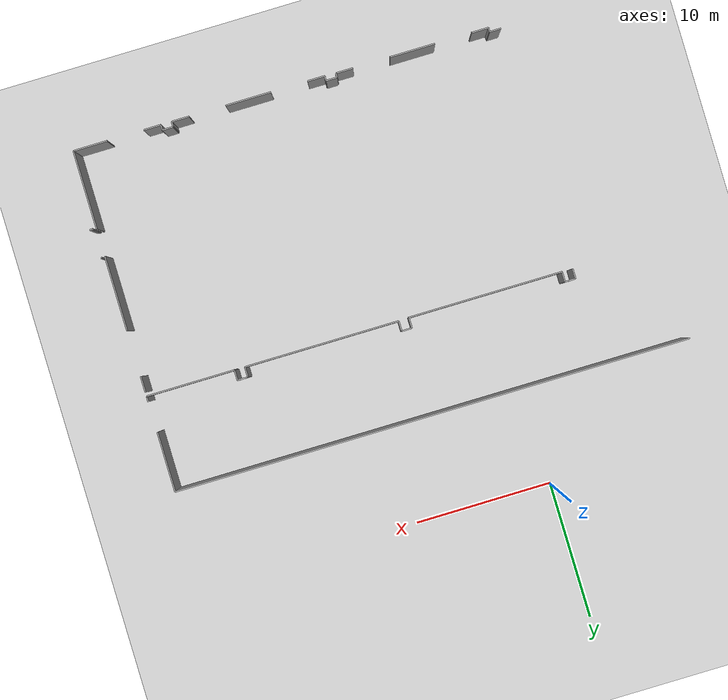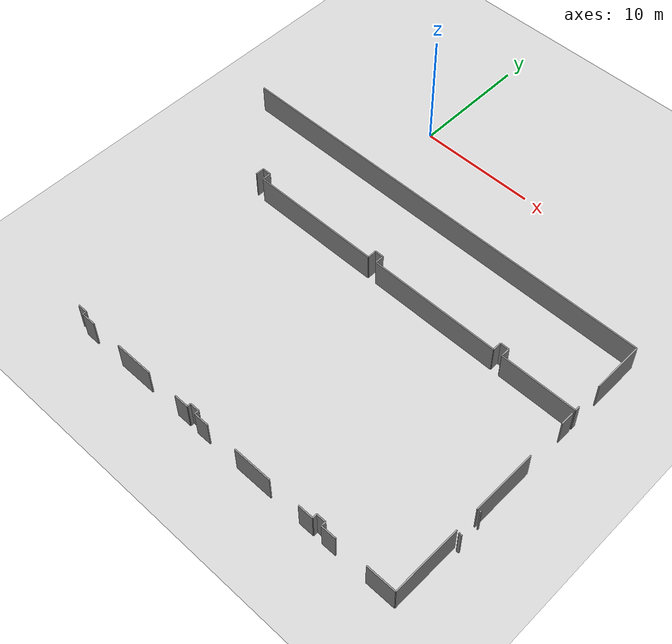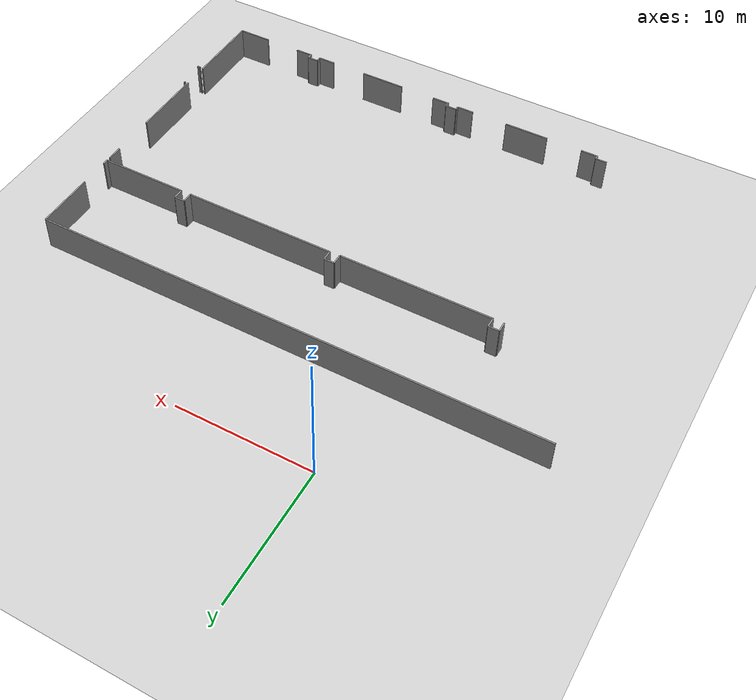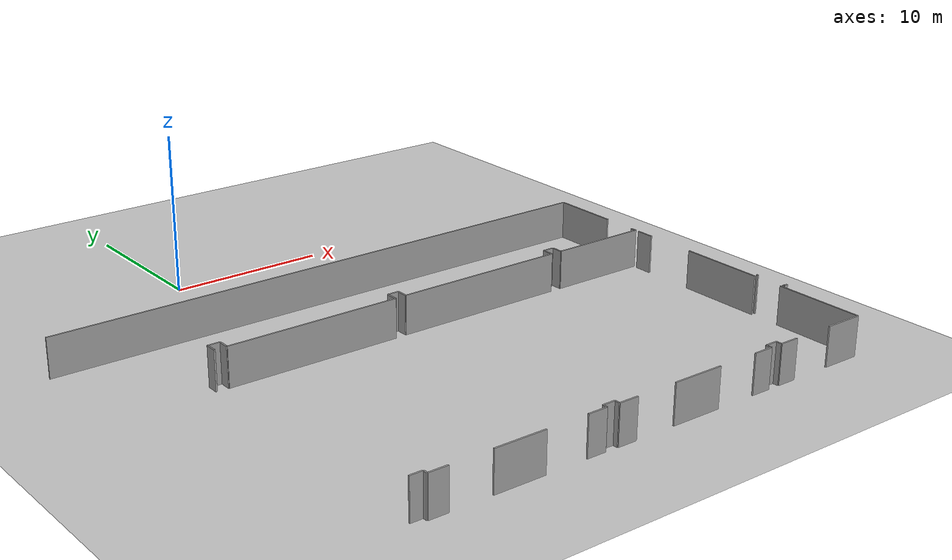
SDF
<sdf version="1.6">
 <world name="default">
  <model name="ground_plane">
   <static>1</static>
   <link name="link">
    <collision name="collision">
     <geometry><plane><normal>0 0 1</normal><size>100 100</size></plane></geometry>
     <surface><friction><ode><mu>100</mu><mu2>50</mu2></ode></friction></surface>
    </collision>
    <visual name="visual">
     <cast_shadows>0</cast_shadows>
     <geometry><plane><normal>0 0 1</normal><size>100 100</size></plane></geometry>
     <material>
      <script><uri>file://media/materials/scripts/gazebo.material</uri><name>Gazebo/Grey</name></script>
     </material>
    </visual>
   </link>
  </model>
  <model name="50052749">
   <static>1</static>
   <link name="Wall_305">
    <collision name="Wall_305_Collision">
     <geometry><box><size>1.16424148057 0.1 2.5</size></box></geometry>
     <pose>0.582120740286 0 1.25 0 0 0</pose>
    </collision>
    <visual name="Wall_305_Visual">
     <pose>0.582120740286 0 1.25 0 0 0</pose>
     <geometry><box><size>1.16424148057 0.1 2.5</size></box></geometry>
     <material>
      <script><uri>file://media/materials/scripts/gazebo.material</uri><name>Gazebo/Grey</name></script>
      <ambient>1 1 1 1</ambient>
     </material>
    </visual>
    <pose>68.0470109095 -46.8636993006 0 0 0 -1.57079632679</pose>
   </link>
   <link name="Wall_306">
    <collision name="Wall_306_Collision">
     <geometry><box><size>5.45223084999 0.1 2.5</size></box></geometry>
     <pose>2.726115425 0 1.25 0 0 0</pose>
    </collision>
    <visual name="Wall_306_Visual">
     <pose>2.726115425 0 1.25 0 0 0</pose>
     <geometry><box><size>5.45223084999 0.1 2.5</size></box></geometry>
     <material>
      <script><uri>file://media/materials/scripts/gazebo.material</uri><name>Gazebo/Grey</name></script>
      <ambient>1 1 1 1</ambient>
     </material>
    </visual>
    <pose>68.0470109095 -51.3677491669 0 0 0 -1.57079632679</pose>
   </link>
   <link name="Wall_307">
    <collision name="Wall_307_Collision">
     <geometry><box><size>5.71596666785 0.1 2.5</size></box></geometry>
     <pose>2.85798333393 0 1.25 0 0 0</pose>
    </collision>
    <visual name="Wall_307_Visual">
     <pose>2.85798333393 0 1.25 0 0 0</pose>
     <geometry><box><size>5.71596666785 0.1 2.5</size></box></geometry>
     <material>
      <script><uri>file://media/materials/scripts/gazebo.material</uri><name>Gazebo/Grey</name></script>
      <ambient>1 1 1 1</ambient>
     </material>
    </visual>
    <pose>68.0470109095 -58.8043384542 0 0 0 -1.57079632679</pose>
   </link>
   <link name="Wall_308">
    <collision name="Wall_308_Collision">
     <geometry><box><size>2.46592989699 0.1 2.5</size></box></geometry>
     <pose>1.2329649485 0 1.25 0 0 0</pose>
    </collision>
    <visual name="Wall_308_Visual">
     <pose>1.2329649485 0 1.25 0 0 0</pose>
     <geometry><box><size>2.46592989699 0.1 2.5</size></box></geometry>
     <material>
      <script><uri>file://media/materials/scripts/gazebo.material</uri><name>Gazebo/Grey</name></script>
      <ambient>1 1 1 1</ambient>
     </material>
    </visual>
    <pose>68.0470109095 -64.5203051221 0 0 0 3.14159265359</pose>
   </link>
   <link name="Wall_309">
    <collision name="Wall_309_Collision">
     <geometry><box><size>1.25692940502 0.1 2.5</size></box></geometry>
     <pose>0.628464702511 0 1.25 0 0 0</pose>
    </collision>
    <visual name="Wall_309_Visual">
     <pose>0.628464702511 0 1.25 0 0 0</pose>
     <geometry><box><size>1.25692940502 0.1 2.5</size></box></geometry>
     <material>
      <script><uri>file://media/materials/scripts/gazebo.material</uri><name>Gazebo/Grey</name></script>
      <ambient>1 1 1 1</ambient>
     </material>
    </visual>
    <pose>62.9129113898 -64.5203051221 0 0 0 3.14159265359</pose>
   </link>
   <link name="Wall_310">
    <collision name="Wall_310_Collision">
     <geometry><box><size>0.37924703424 0.1 2.5</size></box></geometry>
     <pose>0.18962351712 0 1.25 0 0 0</pose>
    </collision>
    <visual name="Wall_310_Visual">
     <pose>0.18962351712 0 1.25 0 0 0</pose>
     <geometry><box><size>0.37924703424 0.1 2.5</size></box></geometry>
     <material>
      <script><uri>file://media/materials/scripts/gazebo.material</uri><name>Gazebo/Grey</name></script>
      <ambient>1 1 1 1</ambient>
     </material>
    </visual>
    <pose>61.6559819848 -64.5203051221 0 0 0 1.57079632679</pose>
   </link>
   <link name="Wall_311">
    <collision name="Wall_311_Collision">
     <geometry><box><size>0.793870170972 0.1 2.5</size></box></geometry>
     <pose>0.396935085486 0 1.25 0 0 0</pose>
    </collision>
    <visual name="Wall_311_Visual">
     <pose>0.396935085486 0 1.25 0 0 0</pose>
     <geometry><box><size>0.793870170972 0.1 2.5</size></box></geometry>
     <material>
      <script><uri>file://media/materials/scripts/gazebo.material</uri><name>Gazebo/Grey</name></script>
      <ambient>1 1 1 1</ambient>
     </material>
    </visual>
    <pose>61.6559819848 -64.1410580878 0 0 0 3.14159265359</pose>
   </link>
   <link name="Wall_312">
    <collision name="Wall_312_Collision">
     <geometry><box><size>0.374935967987 0.1 2.5</size></box></geometry>
     <pose>0.187467983993 0 1.25 0 0 0</pose>
    </collision>
    <visual name="Wall_312_Visual">
     <pose>0.187467983993 0 1.25 0 0 0</pose>
     <geometry><box><size>0.374935967987 0.1 2.5</size></box></geometry>
     <material>
      <script><uri>file://media/materials/scripts/gazebo.material</uri><name>Gazebo/Grey</name></script>
      <ambient>1 1 1 1</ambient>
     </material>
    </visual>
    <pose>60.8621118138 -64.1410580878 0 0 0 -1.57079632679</pose>
   </link>
   <link name="Wall_313">
    <collision name="Wall_313_Collision">
     <geometry><box><size>1.27696318349 0.1 2.5</size></box></geometry>
     <pose>0.638481591747 0 1.25 0 0 0</pose>
    </collision>
    <visual name="Wall_313_Visual">
     <pose>0.638481591747 0 1.25 0 0 0</pose>
     <geometry><box><size>1.27696318349 0.1 2.5</size></box></geometry>
     <material>
      <script><uri>file://media/materials/scripts/gazebo.material</uri><name>Gazebo/Grey</name></script>
      <ambient>1 1 1 1</ambient>
     </material>
    </visual>
    <pose>60.8621118138 -64.5159940558 0 0 0 3.14159265359</pose>
   </link>
   <link name="Wall_314">
    <collision name="Wall_314_Collision">
     <geometry><box><size>3.30582704002 0.1 2.5</size></box></geometry>
     <pose>1.65291352001 0 1.25 0 0 0</pose>
    </collision>
    <visual name="Wall_314_Visual">
     <pose>1.65291352001 0 1.25 0 0 0</pose>
     <geometry><box><size>3.30582704002 0.1 2.5</size></box></geometry>
     <material>
      <script><uri>file://media/materials/scripts/gazebo.material</uri><name>Gazebo/Grey</name></script>
      <ambient>1 1 1 1</ambient>
     </material>
    </visual>
    <pose>56.9173593958 -64.5159940558 0 0 0 3.14159265359</pose>
   </link>
   <link name="Wall_315">
    <collision name="Wall_315_Collision">
     <geometry><box><size>1.26859464312 0.1 2.5</size></box></geometry>
     <pose>0.63429732156 0 1.25 0 0 0</pose>
    </collision>
    <visual name="Wall_315_Visual">
     <pose>0.63429732156 0 1.25 0 0 0</pose>
     <geometry><box><size>1.26859464312 0.1 2.5</size></box></geometry>
     <material>
      <script><uri>file://media/materials/scripts/gazebo.material</uri><name>Gazebo/Grey</name></script>
      <ambient>1 1 1 1</ambient>
     </material>
    </visual>
    <pose>50.9436163252 -64.5159940558 0 0 0 3.14159265359</pose>
   </link>
   <link name="Wall_316">
    <collision name="Wall_316_Collision">
     <geometry><box><size>0.342476175019 0.1 2.5</size></box></geometry>
     <pose>0.17123808751 0 1.25 0 0 0</pose>
    </collision>
    <visual name="Wall_316_Visual">
     <pose>0.17123808751 0 1.25 0 0 0</pose>
     <geometry><box><size>0.342476175019 0.1 2.5</size></box></geometry>
     <material>
      <script><uri>file://media/materials/scripts/gazebo.material</uri><name>Gazebo/Grey</name></script>
      <ambient>1 1 1 1</ambient>
     </material>
    </visual>
    <pose>49.6750216821 -64.5159940558 0 0 0 1.57079632679</pose>
   </link>
   <link name="Wall_317">
    <collision name="Wall_317_Collision">
     <geometry><box><size>0.81200200845 0.1 2.5</size></box></geometry>
     <pose>0.406001004225 0 1.25 0 0 0</pose>
    </collision>
    <visual name="Wall_317_Visual">
     <pose>0.406001004225 0 1.25 0 0 0</pose>
     <geometry><box><size>0.81200200845 0.1 2.5</size></box></geometry>
     <material>
      <script><uri>file://media/materials/scripts/gazebo.material</uri><name>Gazebo/Grey</name></script>
      <ambient>1 1 1 1</ambient>
     </material>
    </visual>
    <pose>49.6750216821 -64.1735178808 0 0 0 3.14159265359</pose>
   </link>
   <link name="Wall_318">
    <collision name="Wall_318_Collision">
     <geometry><box><size>0.304437355135 0.1 2.5</size></box></geometry>
     <pose>0.152218677568 0 1.25 0 0 0</pose>
    </collision>
    <visual name="Wall_318_Visual">
     <pose>0.152218677568 0 1.25 0 0 0</pose>
     <geometry><box><size>0.304437355135 0.1 2.5</size></box></geometry>
     <material>
      <script><uri>file://media/materials/scripts/gazebo.material</uri><name>Gazebo/Grey</name></script>
      <ambient>1 1 1 1</ambient>
     </material>
    </visual>
    <pose>48.8630196737 -64.1735178808 0 0 0 -1.57079632679</pose>
   </link>
   <link name="Wall_319">
    <collision name="Wall_319_Collision">
     <geometry><box><size>1.24691251579 0.1 2.5</size></box></geometry>
     <pose>0.623456257893 0 1.25 0 0 0</pose>
    </collision>
    <visual name="Wall_319_Visual">
     <pose>0.623456257893 0 1.25 0 0 0</pose>
     <geometry><box><size>1.24691251579 0.1 2.5</size></box></geometry>
     <material>
      <script><uri>file://media/materials/scripts/gazebo.material</uri><name>Gazebo/Grey</name></script>
      <ambient>1 1 1 1</ambient>
     </material>
    </visual>
    <pose>48.8630196737 -64.4779552359 0 0 0 3.14159265359</pose>
   </link>
   <link name="Wall_320">
    <collision name="Wall_320_Collision">
     <geometry><box><size>3.29137228847 0.1 2.5</size></box></geometry>
     <pose>1.64568614423 0 1.25 0 0 0</pose>
    </collision>
    <visual name="Wall_320_Visual">
     <pose>1.64568614423 0 1.25 0 0 0</pose>
     <geometry><box><size>3.29137228847 0.1 2.5</size></box></geometry>
     <material>
      <script><uri>file://media/materials/scripts/gazebo.material</uri><name>Gazebo/Grey</name></script>
      <ambient>1 1 1 1</ambient>
     </material>
    </visual>
    <pose>44.9120542484 -64.4779552359 0 0 0 3.14159265359</pose>
   </link>
   <link name="Wall_321">
    <collision name="Wall_321_Collision">
     <geometry><box><size>1.23905115968 0.1 2.5</size></box></geometry>
     <pose>0.619525579838 0 1.25 0 0 0</pose>
    </collision>
    <visual name="Wall_321_Visual">
     <pose>0.619525579838 0 1.25 0 0 0</pose>
     <geometry><box><size>1.23905115968 0.1 2.5</size></box></geometry>
     <material>
      <script><uri>file://media/materials/scripts/gazebo.material</uri><name>Gazebo/Grey</name></script>
      <ambient>1 1 1 1</ambient>
     </material>
    </visual>
    <pose>38.9455385536 -64.4779552359 0 0 0 3.14159265359</pose>
   </link>
   <link name="Wall_322">
    <collision name="Wall_322_Collision">
     <geometry><box><size>0.299111920352 0.1 2.5</size></box></geometry>
     <pose>0.149555960176 0 1.25 0 0 0</pose>
    </collision>
    <visual name="Wall_322_Visual">
     <pose>0.149555960176 0 1.25 0 0 0</pose>
     <geometry><box><size>0.299111920352 0.1 2.5</size></box></geometry>
     <material>
      <script><uri>file://media/materials/scripts/gazebo.material</uri><name>Gazebo/Grey</name></script>
      <ambient>1 1 1 1</ambient>
     </material>
    </visual>
    <pose>37.7064873939 -64.4779552359 0 0 0 1.57079632679</pose>
   </link>
   <link name="Wall_323">
    <collision name="Wall_323_Collision">
     <geometry><box><size>0.825822779674 0.1 2.5</size></box></geometry>
     <pose>0.412911389837 0 1.25 0 0 0</pose>
    </collision>
    <visual name="Wall_323_Visual">
     <pose>0.412911389837 0 1.25 0 0 0</pose>
     <geometry><box><size>0.825822779674 0.1 2.5</size></box></geometry>
     <material>
      <script><uri>file://media/materials/scripts/gazebo.material</uri><name>Gazebo/Grey</name></script>
      <ambient>1 1 1 1</ambient>
     </material>
    </visual>
    <pose>37.7064873939 -64.1788433156 0 0 0 3.14159265359</pose>
   </link>
   <link name="Wall_347">
    <collision name="Wall_347_Collision">
     <geometry><box><size>0.119061506236 0.1 2.5</size></box></geometry>
     <pose>0.0595307531179 0 1.25 0 0 0</pose>
    </collision>
    <visual name="Wall_347_Visual">
     <pose>0.0595307531179 0 1.25 0 0 0</pose>
     <geometry><box><size>0.119061506236 0.1 2.5</size></box></geometry>
     <material>
      <script><uri>file://media/materials/scripts/gazebo.material</uri><name>Gazebo/Grey</name></script>
      <ambient>1 1 1 1</ambient>
     </material>
    </visual>
    <pose>68.30808401 -56.7144856898 0 0 0 -1.57079632679</pose>
   </link>
   <link name="Wall_348">
    <collision name="Wall_348_Collision">
     <geometry><box><size>0.0869821014673 0.1 2.5</size></box></geometry>
     <pose>0.0434910507336 0 1.25 0 0 0</pose>
    </collision>
    <visual name="Wall_348_Visual">
     <pose>0.0434910507336 0 1.25 0 0 0</pose>
     <geometry><box><size>0.0869821014673 0.1 2.5</size></box></geometry>
     <material>
      <script><uri>file://media/materials/scripts/gazebo.material</uri><name>Gazebo/Grey</name></script>
      <ambient>1 1 1 1</ambient>
     </material>
    </visual>
    <pose>68.30808401 -58.8015489407 0 0 0 -1.57079632679</pose>
   </link>
   <link name="Wall_349">
    <collision name="Wall_349_Collision">
     <geometry><box><size>0.237615828207 0.1 2.5</size></box></geometry>
     <pose>0.118807914103 0 1.25 0 0 0</pose>
    </collision>
    <visual name="Wall_349_Visual">
     <pose>0.118807914103 0 1.25 0 0 0</pose>
     <geometry><box><size>0.237615828207 0.1 2.5</size></box></geometry>
     <material>
      <script><uri>file://media/materials/scripts/gazebo.material</uri><name>Gazebo/Grey</name></script>
      <ambient>1 1 1 1</ambient>
     </material>
    </visual>
    <pose>68.30808401 -58.8885310422 0 0 0 0.0</pose>
   </link>
   <link name="Wall_368">
    <collision name="Wall_368_Collision">
     <geometry><box><size>0.732881263092 0.1 2.5</size></box></geometry>
     <pose>0.366440631546 0 1.25 0 0 0</pose>
    </collision>
    <visual name="Wall_368_Visual">
     <pose>0.366440631546 0 1.25 0 0 0</pose>
     <geometry><box><size>0.732881263092 0.1 2.5</size></box></geometry>
     <material>
      <script><uri>file://media/materials/scripts/gazebo.material</uri><name>Gazebo/Grey</name></script>
      <ambient>1 1 1 1</ambient>
     </material>
    </visual>
    <pose>36.8845952923 -46.6103607602 0 0 0 1.57079632679</pose>
   </link>
   <link name="Wall_369">
    <collision name="Wall_369_Collision">
     <geometry><box><size>0.77142726724 0.1 2.5</size></box></geometry>
     <pose>0.38571363362 0 1.25 0 0 0</pose>
    </collision>
    <visual name="Wall_369_Visual">
     <pose>0.38571363362 0 1.25 0 0 0</pose>
     <geometry><box><size>0.77142726724 0.1 2.5</size></box></geometry>
     <material>
      <script><uri>file://media/materials/scripts/gazebo.material</uri><name>Gazebo/Grey</name></script>
      <ambient>1 1 1 1</ambient>
     </material>
    </visual>
    <pose>36.8845952923 -45.8774794971 0 0 0 0.0</pose>
   </link>
   <link name="Wall_370">
    <collision name="Wall_370_Collision">
     <geometry><box><size>0.732881263092 0.1 2.5</size></box></geometry>
     <pose>0.366440631546 0 1.25 0 0 0</pose>
    </collision>
    <visual name="Wall_370_Visual">
     <pose>0.366440631546 0 1.25 0 0 0</pose>
     <geometry><box><size>0.732881263092 0.1 2.5</size></box></geometry>
     <material>
      <script><uri>file://media/materials/scripts/gazebo.material</uri><name>Gazebo/Grey</name></script>
      <ambient>1 1 1 1</ambient>
     </material>
    </visual>
    <pose>37.6560225596 -45.8774794971 0 0 0 -1.57079632679</pose>
   </link>
   <link name="Wall_371">
    <collision name="Wall_371_Collision">
     <geometry><box><size>11.2100402197 0.1 2.5</size></box></geometry>
     <pose>5.60502010986 0 1.25 0 0 0</pose>
    </collision>
    <visual name="Wall_371_Visual">
     <pose>5.60502010986 0 1.25 0 0 0</pose>
     <geometry><box><size>11.2100402197 0.1 2.5</size></box></geometry>
     <material>
      <script><uri>file://media/materials/scripts/gazebo.material</uri><name>Gazebo/Grey</name></script>
      <ambient>1 1 1 1</ambient>
     </material>
    </visual>
    <pose>37.6560225596 -46.6103607602 0 0 0 0.0</pose>
   </link>
   <link name="Wall_372">
    <collision name="Wall_372_Collision">
     <geometry><box><size>0.771934451506 0.1 2.5</size></box></geometry>
     <pose>0.385967225753 0 1.25 0 0 0</pose>
    </collision>
    <visual name="Wall_372_Visual">
     <pose>0.385967225753 0 1.25 0 0 0</pose>
     <geometry><box><size>0.771934451506 0.1 2.5</size></box></geometry>
     <material>
      <script><uri>file://media/materials/scripts/gazebo.material</uri><name>Gazebo/Grey</name></script>
      <ambient>1 1 1 1</ambient>
     </material>
    </visual>
    <pose>48.8660627793 -46.6103607602 0 0 0 1.57079632679</pose>
   </link>
   <link name="Wall_373">
    <collision name="Wall_373_Collision">
     <geometry><box><size>0.749745139907 0.1 2.5</size></box></geometry>
     <pose>0.374872569953 0 1.25 0 0 0</pose>
    </collision>
    <visual name="Wall_373_Visual">
     <pose>0.374872569953 0 1.25 0 0 0</pose>
     <geometry><box><size>0.749745139907 0.1 2.5</size></box></geometry>
     <material>
      <script><uri>file://media/materials/scripts/gazebo.material</uri><name>Gazebo/Grey</name></script>
      <ambient>1 1 1 1</ambient>
     </material>
    </visual>
    <pose>48.8660627793 -45.8384263087 0 0 0 0.0</pose>
   </link>
   <link name="Wall_374">
    <collision name="Wall_374_Collision">
     <geometry><box><size>0.738713882141 0.1 2.5</size></box></geometry>
     <pose>0.36935694107 0 1.25 0 0 0</pose>
    </collision>
    <visual name="Wall_374_Visual">
     <pose>0.36935694107 0 1.25 0 0 0</pose>
     <geometry><box><size>0.738713882141 0.1 2.5</size></box></geometry>
     <material>
      <script><uri>file://media/materials/scripts/gazebo.material</uri><name>Gazebo/Grey</name></script>
      <ambient>1 1 1 1</ambient>
     </material>
    </visual>
    <pose>49.6158079192 -45.8384263087 0 0 0 -1.57079632679</pose>
   </link>
   <link name="Wall_375">
    <collision name="Wall_375_Collision">
     <geometry><box><size>11.2463038947 0.1 2.5</size></box></geometry>
     <pose>5.62315194733 0 1.25 0 0 0</pose>
    </collision>
    <visual name="Wall_375_Visual">
     <pose>5.62315194733 0 1.25 0 0 0</pose>
     <geometry><box><size>11.2463038947 0.1 2.5</size></box></geometry>
     <material>
      <script><uri>file://media/materials/scripts/gazebo.material</uri><name>Gazebo/Grey</name></script>
      <ambient>1 1 1 1</ambient>
     </material>
    </visual>
    <pose>49.6158079192 -46.5771401908 0 0 0 0.0</pose>
   </link>
   <link name="Wall_376">
    <collision name="Wall_376_Collision">
     <geometry><box><size>0.749745139907 0.1 2.5</size></box></geometry>
     <pose>0.374872569953 0 1.25 0 0 0</pose>
    </collision>
    <visual name="Wall_376_Visual">
     <pose>0.374872569953 0 1.25 0 0 0</pose>
     <geometry><box><size>0.749745139907 0.1 2.5</size></box></geometry>
     <material>
      <script><uri>file://media/materials/scripts/gazebo.material</uri><name>Gazebo/Grey</name></script>
      <ambient>1 1 1 1</ambient>
     </material>
    </visual>
    <pose>60.8621118138 -46.5771401908 0 0 0 1.57079632679</pose>
   </link>
   <link name="Wall_377">
    <collision name="Wall_377_Collision">
     <geometry><box><size>0.760776397673 0.1 2.5</size></box></geometry>
     <pose>0.380388198837 0 1.25 0 0 0</pose>
    </collision>
    <visual name="Wall_377_Visual">
     <pose>0.380388198837 0 1.25 0 0 0</pose>
     <geometry><box><size>0.760776397673 0.1 2.5</size></box></geometry>
     <material>
      <script><uri>file://media/materials/scripts/gazebo.material</uri><name>Gazebo/Grey</name></script>
      <ambient>1 1 1 1</ambient>
     </material>
    </visual>
    <pose>60.8621118138 -45.8273950509 0 0 0 0.0</pose>
   </link>
   <link name="Wall_378">
    <collision name="Wall_378_Collision">
     <geometry><box><size>0.749745139907 0.1 2.5</size></box></geometry>
     <pose>0.374872569953 0 1.25 0 0 0</pose>
    </collision>
    <visual name="Wall_378_Visual">
     <pose>0.374872569953 0 1.25 0 0 0</pose>
     <geometry><box><size>0.749745139907 0.1 2.5</size></box></geometry>
     <material>
      <script><uri>file://media/materials/scripts/gazebo.material</uri><name>Gazebo/Grey</name></script>
      <ambient>1 1 1 1</ambient>
     </material>
    </visual>
    <pose>61.6228882115 -45.8273950509 0 0 0 -1.57079632679</pose>
   </link>
   <link name="Wall_379">
    <collision name="Wall_379_Collision">
     <geometry><box><size>6.42412269802 0.1 2.5</size></box></geometry>
     <pose>3.21206134901 0 1.25 0 0 0</pose>
    </collision>
    <visual name="Wall_379_Visual">
     <pose>3.21206134901 0 1.25 0 0 0</pose>
     <geometry><box><size>6.42412269802 0.1 2.5</size></box></geometry>
     <material>
      <script><uri>file://media/materials/scripts/gazebo.material</uri><name>Gazebo/Grey</name></script>
      <ambient>1 1 1 1</ambient>
     </material>
    </visual>
    <pose>61.6228882115 -46.5771401908 0 0 0 0.0</pose>
   </link>
   <link name="Wall_380">
    <collision name="Wall_380_Collision">
     <geometry><box><size>0.403591878966 0.1 2.5</size></box></geometry>
     <pose>0.201795939483 0 1.25 0 0 0</pose>
    </collision>
    <visual name="Wall_380_Visual">
     <pose>0.201795939483 0 1.25 0 0 0</pose>
     <geometry><box><size>0.403591878966 0.1 2.5</size></box></geometry>
     <material>
      <script><uri>file://media/materials/scripts/gazebo.material</uri><name>Gazebo/Grey</name></script>
      <ambient>1 1 1 1</ambient>
     </material>
    </visual>
    <pose>68.0470109095 -46.5771401908 0 0 0 1.57079632679</pose>
   </link>
   <link name="Wall_381">
    <collision name="Wall_381_Collision">
     <geometry><box><size>4.359882739 0.1 2.5</size></box></geometry>
     <pose>2.1799413695 0 1.25 0 0 0</pose>
    </collision>
    <visual name="Wall_381_Visual">
     <pose>2.1799413695 0 1.25 0 0 0</pose>
     <geometry><box><size>4.359882739 0.1 2.5</size></box></geometry>
     <material>
      <script><uri>file://media/materials/scripts/gazebo.material</uri><name>Gazebo/Grey</name></script>
      <ambient>1 1 1 1</ambient>
     </material>
    </visual>
    <pose>68.0470109095 -43.9457414273 0 0 0 1.57079632679</pose>
   </link>
   <link name="Wall_382">
    <collision name="Wall_382_Collision">
     <geometry><box><size>37.6590656651 0.1 2.5</size></box></geometry>
     <pose>18.8295328326 0 1.25 0 0 0</pose>
    </collision>
    <visual name="Wall_382_Visual">
     <pose>18.8295328326 0 1.25 0 0 0</pose>
     <geometry><box><size>37.6590656651 0.1 2.5</size></box></geometry>
     <material>
      <script><uri>file://media/materials/scripts/gazebo.material</uri><name>Gazebo/Grey</name></script>
      <ambient>1 1 1 1</ambient>
     </material>
    </visual>
    <pose>68.0470109095 -39.5858586883 0 0 0 3.14159265359</pose>
   </link>
   <pose>-42.45 32.2703051221 0 0 0 0</pose>
  </model>
 </world>
</sdf>
